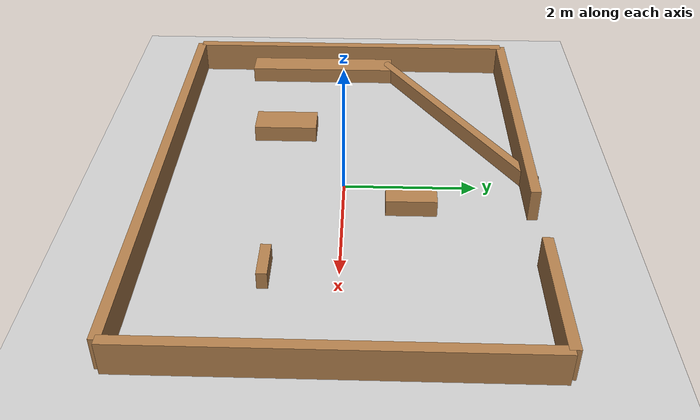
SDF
<sdf version="1.8">
 <world name="car_world">
  <physics name="1ms" type="ignored">
   <max_step_size>0.001</max_step_size>
   <real_time_factor>1.0</real_time_factor>
  </physics>
  <plugin filename="gz-sim-physics-system" name="gz::sim::systems::Physics"/>
  <plugin filename="gz-sim-user-commands-system" name="gz::sim::systems::UserCommands"/>
  <plugin filename="gz-sim-scene-broadcaster-system" name="gz::sim::systems::SceneBroadcaster"/>
  <plugin filename="gz-sim-sensors-system" name="gz::sim::systems::Sensors">
   <render_engine>ogre2</render_engine>
  </plugin>
  <plugin filename="BasicSystem" name="ros_gz_example_gazebo::BasicSystem"/>
  <plugin filename="FullSystem" name="ros_gz_example_gazebo::FullSystem"/>
  <light type="directional" name="sun">
   <pose>0 0 10 0 0 0</pose>
   <diffuse>0.8 0.8 0.8 1</diffuse>
   <specular>0.2 0.2 0.2 1</specular>
   <attenuation>
    <range>1000</range>
    <constant>0.9</constant>
    <linear>0.01</linear>
    <quadratic>0.001</quadratic>
   </attenuation>
   <direction>-0.5 0.1 -0.9</direction>
  </light>
  <model name="ground_plane">
   <static>true</static>
   <link name="link">
    <collision name="collision"><geometry><plane><normal>0 0 1</normal></plane></geometry></collision>
    <visual name="visual">
     <geometry><plane><normal>0 0 1</normal><size>100 100</size></plane></geometry>
     <material>
      <ambient>0.8 0.8 0.8 1</ambient>
      <diffuse>0.8 0.8 0.8 1</diffuse>
      <specular>0.8 0.8 0.8 1</specular>
     </material>
    </visual>
   </link>
  </model>
  <model name="obstacles">
   <static>true</static>
   <include merge="true"><uri>package://roboracer_description/models/outer_walls</uri></include>
   <include merge="true"><uri>package://roboracer_description/models/inner_walls</uri></include>
  </model>
 </world>
</sdf>

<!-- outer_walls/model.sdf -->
<sdf version='1.8'>
  <model name='outer_walls'>
    <pose>0 0 0 0 0 0</pose>
    <link name='Wall_1'>
      <collision name='Wall_1_Collision'>
        <geometry>
          <box>
            <size>5.5 0.15 0.5</size>
          </box>
        </geometry>
        <pose>0 0 0.25 0 -0 0</pose>
      </collision>
      <visual name='Wall_1_Visual'>
        <pose>0 0 0.25 0 -0 0</pose>
        <geometry>
          <box>
            <size>5.5 0.15 0.5</size>
          </box>
        </geometry>
        <material>
          <script>
            <uri>file://media/materials/scripts/gazebo.material</uri>
            <name>Gazebo/Wood</name>
          </script>
          <ambient>1 1 1 1</ambient>
        </material>
      </visual>
      <pose>-3.75 0 0 0 0 1.57</pose>
    </link>
    <link name='Wall_2a'>
      <collision name='Wall_2a_Collision'>
        <geometry>
          <box>
            <size>2.0 0.15 0.5</size>
          </box>
        </geometry>
        <pose>0 0 0.25 0 -0 0</pose>
      </collision>
      <visual name='Wall_2a_Visual'>
        <pose>0 0 0.25 0 -0 0</pose>
        <geometry>
          <box>
            <size>2.0 0.15 0.5</size>
          </box>
        </geometry>
        <material>
          <script>
            <uri>file://media/materials/scripts/gazebo.material</uri>
            <name>Gazebo/Wood</name>
          </script>
          <ambient>1 1 1 1</ambient>
        </material>
      </visual>
      <pose>2.75 2.75 0 0 0 0</pose>
    </link>
    <link name='Wall_2b'>
      <collision name='Wall_2b_Collision'>
        <geometry>
          <box>
            <size>4.5 0.15 0.5</size>
          </box>
        </geometry>
        <pose>0 0 0.25 0 -0 0</pose>
      </collision>
      <visual name='Wall_2b_Visual'>
        <pose>0 0 0.25 0 -0 0</pose>
        <geometry>
          <box>
            <size>4.5 0.15 0.5</size>
          </box>
        </geometry>
        <material>
          <script>
            <uri>file://media/materials/scripts/gazebo.material</uri>
            <name>Gazebo/Wood</name>
          </script>
          <ambient>1 1 1 1</ambient>
        </material>
      </visual>
      <pose>-1.5 2.75 0 0 0 0</pose>
    </link>
    <link name='Wall_3'>
      <collision name='Wall_3_Collision'>
        <geometry>
          <box>
            <size>5.5 0.15 0.5</size>
          </box>
        </geometry>
        <pose>0 0 0.25 0 -0 0</pose>
      </collision>
      <visual name='Wall_3_Visual'>
        <pose>0 0 0.25 0 -0 0</pose>
        <geometry>
          <box>
            <size>5.5 0.15 0.5</size>
          </box>
        </geometry>
        <material>
          <script>
            <uri>file://media/materials/scripts/gazebo.material</uri>
            <name>Gazebo/Wood</name>
          </script>
          <ambient>1 1 1 1</ambient>
        </material>
      </visual>
      <pose>3.75 0 0 0 0 1.57</pose>
    </link>
    <link name='Wall_4'>
      <collision name='Wall_4_Collision'>
        <geometry>
          <box>
            <size>7.5 0.15 0.5</size>
          </box>
        </geometry>
        <pose>0 0 0.25 0 -0 0</pose>
      </collision>
      <visual name='Wall_4_Visual'>
        <pose>0 0 0.25 0 -0 0</pose>
        <geometry>
          <box>
            <size>7.5 0.15 0.5</size>
          </box>
        </geometry>
        <material>
          <script>
            <uri>file://media/materials/scripts/gazebo.material</uri>
            <name>Gazebo/Wood</name>
          </script>
          <ambient>1 1 1 1</ambient>
        </material>
      </visual>
      <pose>0 -2.75 0 0 0 0</pose>
    </link>
  </model>
</sdf>

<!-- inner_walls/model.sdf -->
<sdf version='1.8'>
  <model name='inner_walls'>
    <pose>0 0 0 0 0 0</pose>

    <link name='inner_wall_1'>
      <collision name='inner_wall_1_collision'>
        <geometry>
          <box>
            <size>0.6 0.15 0.5</size>
          </box>
        </geometry>
        <pose>2 -1 0 0 0 0</pose>
      </collision>
      <visual name='inner_wall_visual'>
        <pose>2 -1 0 0 0 0</pose>
        <geometry>
          <box>
            <size>0.6 0.15 0.5</size>
          </box>
        </geometry>
        <material>
          <script>
            <uri>file://media/materials/scripts/gazebo.material</uri>
            <name>Gazebo/Wood</name>
          </script>
          <ambient>1 1 1 1</ambient>
        </material>
      </visual>
    </link>

    <link name='inner_wall_2'>
      <collision name='inner_wall_2_collision'>
        <geometry>
          <box>
            <size>0.75 0.4 0.5</size>
          </box>
        </geometry>
        <pose>0.5 1 0 0 0 1.5708</pose>
      </collision>
      <visual name='inner_wall_2_visual'>
        <pose>0.5 1 0 0 0 1.5708</pose>
        <geometry>
          <box>
            <size>0.75 0.4 0.5</size>
          </box>
        </geometry>
        <material>
          <script>
            <uri>file://media/materials/scripts/gazebo.material</uri>
            <name>Gazebo/Wood</name>
          </script>
          <ambient>1 1 1 1</ambient>
        </material>
      </visual>
    </link>

    <link name='inner_wall_3'>
      <collision name='inner_wall_3_collision'>
        <geometry>
          <box>
            <size>1.0 0.5 0.5</size>
          </box>
        </geometry>
        <pose>-1.5 -1.0 0 0 0 1.5708</pose>
      </collision>
      <visual name='inner_wall_3_visual'>
        <pose>-1.5 -1.0 0 0 0 1.5708</pose>
        <geometry>
          <box>
            <size>1.0 0.5 0.5</size>
          </box>
        </geometry>
        <material>
          <script>
            <uri>file://media/materials/scripts/gazebo.material</uri>
            <name>Gazebo/Wood</name>
          </script>
          <ambient>1 1 1 1</ambient>
        </material>
      </visual>
    </link>

    <link name='inner_wall_4'>
      <collision name='inner_wall_4_collision'>
        <geometry>
          <box>
            <size>2.5 0.5 0.5</size>
          </box>
        </geometry>
        <pose>-3.5 -0.5 0 0 0 1.5708</pose>
      </collision>
      <visual name='inner_wall_4_visual'>
        <pose>-3.5 -0.5 0 0 0 1.5708</pose>
        <geometry>
          <box>
            <size>2.5 0.5 0.5</size>
          </box>
        </geometry>
        <material>
          <script>
            <uri>file://media/materials/scripts/gazebo.material</uri>
            <name>Gazebo/Wood</name>
          </script>
          <ambient>1 1 1 1</ambient>
        </material>
      </visual>
    </link>

        <link name='inner_wall_5'>
      <collision name='inner_wall_5_collision'>
        <geometry>
          <box>
            <size>4.25 0.15 0.5</size>
          </box>
        </geometry>
        <pose>-1.75 1.75 0 0 0 0.55</pose>
      </collision>
      <visual name='inner_wall_5_visual'>
        <pose>-1.75 1.75 0 0 0 0.55</pose>
        <geometry>
          <box>
            <size>4.25 0.15 0.5</size>
          </box>
        </geometry>
        <material>
          <script>
            <uri>file://media/materials/scripts/gazebo.material</uri>
            <name>Gazebo/Wood</name>
          </script>
          <ambient>1 1 1 1</ambient>
        </material>
      </visual>
    </link>

    <static>1</static>
  </model>
</sdf>
